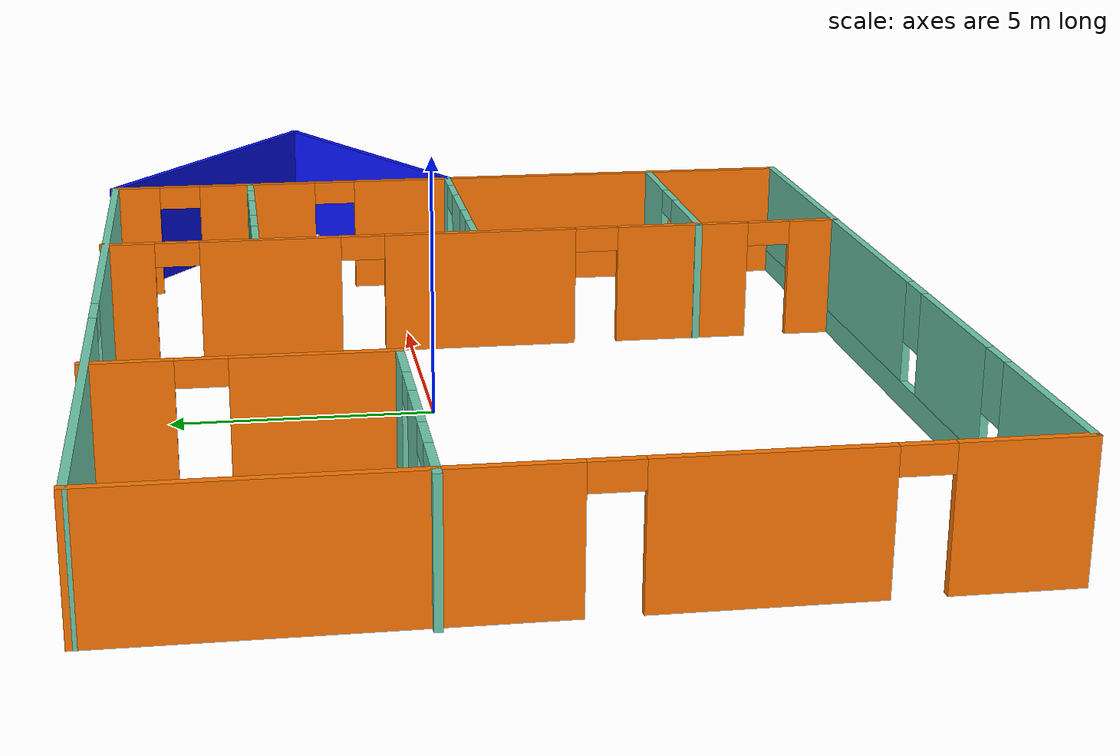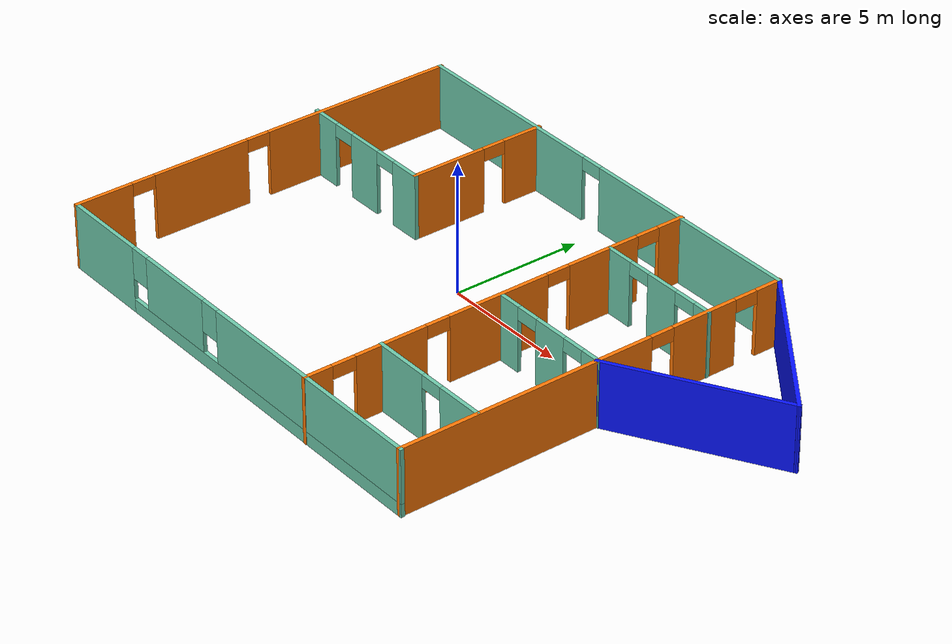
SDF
<?xml version='1.0'?>
<sdf version='1.6'>
  <model name='Building'>
    <pose frame=''>2.68697 -1.37383 0 0 -0 0</pose>
    <link name='Wall_0'>
      <pose frame=''>-2.80813 7.61358 0 0 0 -0.001099</pose>
      <visual name='Wall_0_Visual_0'>
        <pose frame=''>-4.97895 0 1.25 0 -0 0</pose>
        <geometry>
          <box>
            <size>8.08618 0.15 2.5</size>
          </box>
        </geometry>
        <material>
          <script>
            <uri>file://media/materials/scripts/gazebo.material</uri>
            <name>Gazebo/Grey</name>
          </script>
          <ambient>0.435294 0.796078 0.67451 1</ambient>
        </material>
        <meta>
          <layer>0</layer>
        </meta>
      </visual>
      <collision name='Wall_0_Collision_0'>
        <geometry>
          <box>
            <size>8.08618 0.15 2.5</size>
          </box>
        </geometry>
        <pose frame=''>-4.97895 0 1.25 0 -0 0</pose>
      </collision>
      <visual name='Wall_0_Visual_1'>
        <pose frame=''>4.49309 0 1.25 0 -0 0</pose>
        <geometry>
          <box>
            <size>9.0579 0.15 2.5</size>
          </box>
        </geometry>
        <material>
          <script>
            <uri>file://media/materials/scripts/gazebo.material</uri>
            <name>Gazebo/Grey</name>
          </script>
          <ambient>0.435294 0.796078 0.67451 1</ambient>
        </material>
        <meta>
          <layer>0</layer>
        </meta>
      </visual>
      <collision name='Wall_0_Collision_1'>
        <geometry>
          <box>
            <size>9.0579 0.15 2.5</size>
          </box>
        </geometry>
        <pose frame=''>4.49309 0 1.25 0 -0 0</pose>
      </collision>
      <visual name='Wall_0_Visual_2'>
        <pose frame=''>-0.485857 0 2.25 0 -0 0</pose>
        <geometry>
          <box>
            <size>0.9 0.15 0.5</size>
          </box>
        </geometry>
        <material>
          <script>
            <uri>file://media/materials/scripts/gazebo.material</uri>
            <name>Gazebo/Grey</name>
          </script>
          <ambient>0.435294 0.796078 0.67451 1</ambient>
        </material>
        <meta>
          <layer>0</layer>
        </meta>
      </visual>
      <collision name='Wall_0_Collision_2'>
        <geometry>
          <box>
            <size>0.9 0.15 0.5</size>
          </box>
        </geometry>
        <pose frame=''>-0.485857 0 2.25 0 -0 0</pose>
      </collision>
    </link>
    <link name='Wall_11'>
      <pose frame=''>3.73817 4.58148 0 0 -0 0</pose>
      <visual name='Wall_11_Visual_0'>
        <pose frame=''>-1.93324 0 1.25 0 -0 0</pose>
        <geometry>
          <box>
            <size>1.13352 0.15 2.5</size>
          </box>
        </geometry>
        <material>
          <script>
            <uri>file://media/materials/scripts/gazebo.material</uri>
            <name>Gazebo/Grey</name>
          </script>
          <ambient>0.435294 0.796078 0.67451 1</ambient>
        </material>
        <meta>
          <layer>0</layer>
        </meta>
      </visual>
      <collision name='Wall_11_Collision_0'>
        <geometry>
          <box>
            <size>1.13352 0.15 2.5</size>
          </box>
        </geometry>
        <pose frame=''>-1.93324 0 1.25 0 -0 0</pose>
      </collision>
      <visual name='Wall_11_Visual_1'>
        <pose frame=''>0.209239 0 1.25 0 -0 0</pose>
        <geometry>
          <box>
            <size>1.35144 0.15 2.5</size>
          </box>
        </geometry>
        <material>
          <script>
            <uri>file://media/materials/scripts/gazebo.material</uri>
            <name>Gazebo/Grey</name>
          </script>
          <ambient>0.435294 0.796078 0.67451 1</ambient>
        </material>
        <meta>
          <layer>0</layer>
        </meta>
      </visual>
      <collision name='Wall_11_Collision_1'>
        <geometry>
          <box>
            <size>1.35144 0.15 2.5</size>
          </box>
        </geometry>
        <pose frame=''>0.209239 0 1.25 0 -0 0</pose>
      </collision>
      <visual name='Wall_11_Visual_2'>
        <pose frame=''>2.14248 0 1.25 0 -0 0</pose>
        <geometry>
          <box>
            <size>0.71504 0.15 2.5</size>
          </box>
        </geometry>
        <material>
          <script>
            <uri>file://media/materials/scripts/gazebo.material</uri>
            <name>Gazebo/Grey</name>
          </script>
          <ambient>0.435294 0.796078 0.67451 1</ambient>
        </material>
        <meta>
          <layer>0</layer>
        </meta>
      </visual>
      <collision name='Wall_11_Collision_2'>
        <geometry>
          <box>
            <size>0.71504 0.15 2.5</size>
          </box>
        </geometry>
        <pose frame=''>2.14248 0 1.25 0 -0 0</pose>
      </collision>
      <visual name='Wall_11_Visual_3'>
        <pose frame=''>-0.916481 0 2.25 0 -0 0</pose>
        <geometry>
          <box>
            <size>0.9 0.15 0.5</size>
          </box>
        </geometry>
        <material>
          <script>
            <uri>file://media/materials/scripts/gazebo.material</uri>
            <name>Gazebo/Grey</name>
          </script>
          <ambient>0.435294 0.796078 0.67451 1</ambient>
        </material>
        <meta>
          <layer>0</layer>
        </meta>
      </visual>
      <collision name='Wall_11_Collision_3'>
        <geometry>
          <box>
            <size>0.9 0.15 0.5</size>
          </box>
        </geometry>
        <pose frame=''>-0.916481 0 2.25 0 -0 0</pose>
      </collision>
      <visual name='Wall_11_Visual_4'>
        <pose frame=''>1.33496 0 2.25 0 -0 0</pose>
        <geometry>
          <box>
            <size>0.9 0.15 0.5</size>
          </box>
        </geometry>
        <material>
          <script>
            <uri>file://media/materials/scripts/gazebo.material</uri>
            <name>Gazebo/Grey</name>
          </script>
          <ambient>0.435294 0.796078 0.67451 1</ambient>
        </material>
        <meta>
          <layer>0</layer>
        </meta>
      </visual>
      <collision name='Wall_11_Collision_4'>
        <geometry>
          <box>
            <size>0.9 0.15 0.5</size>
          </box>
        </geometry>
        <pose frame=''>1.33496 0 2.25 0 -0 0</pose>
      </collision>
    </link>
    <link name='Wall_13'>
      <pose frame=''>3.77862 0.050456 0 0 -0 0</pose>
      <visual name='Wall_13_Visual_0'>
        <pose frame=''>-2.02383 0 1.25 0 -0 0</pose>
        <geometry>
          <box>
            <size>0.952349 0.15 2.5</size>
          </box>
        </geometry>
        <material>
          <script>
            <uri>file://media/materials/scripts/gazebo.material</uri>
            <name>Gazebo/Grey</name>
          </script>
          <ambient>0.435294 0.796078 0.67451 1</ambient>
        </material>
        <meta>
          <layer>0</layer>
        </meta>
      </visual>
      <collision name='Wall_13_Collision_0'>
        <geometry>
          <box>
            <size>0.952349 0.15 2.5</size>
          </box>
        </geometry>
        <pose frame=''>-2.02383 0 1.25 0 -0 0</pose>
      </collision>
      <visual name='Wall_13_Visual_1'>
        <pose frame=''>0.041638 0 1.25 0 -0 0</pose>
        <geometry>
          <box>
            <size>1.37858 0.15 2.5</size>
          </box>
        </geometry>
        <material>
          <script>
            <uri>file://media/materials/scripts/gazebo.material</uri>
            <name>Gazebo/Grey</name>
          </script>
          <ambient>0.435294 0.796078 0.67451 1</ambient>
        </material>
        <meta>
          <layer>0</layer>
        </meta>
      </visual>
      <collision name='Wall_13_Collision_1'>
        <geometry>
          <box>
            <size>1.37858 0.15 2.5</size>
          </box>
        </geometry>
        <pose frame=''>0.041638 0 1.25 0 -0 0</pose>
      </collision>
      <visual name='Wall_13_Visual_2'>
        <pose frame=''>2.06546 0 1.25 0 -0 0</pose>
        <geometry>
          <box>
            <size>0.869072 0.15 2.5</size>
          </box>
        </geometry>
        <material>
          <script>
            <uri>file://media/materials/scripts/gazebo.material</uri>
            <name>Gazebo/Grey</name>
          </script>
          <ambient>0.435294 0.796078 0.67451 1</ambient>
        </material>
        <meta>
          <layer>0</layer>
        </meta>
      </visual>
      <collision name='Wall_13_Collision_2'>
        <geometry>
          <box>
            <size>0.869072 0.15 2.5</size>
          </box>
        </geometry>
        <pose frame=''>2.06546 0 1.25 0 -0 0</pose>
      </collision>
      <visual name='Wall_13_Visual_3'>
        <pose frame=''>-1.09765 0 2.25 0 -0 0</pose>
        <geometry>
          <box>
            <size>0.9 0.15 0.5</size>
          </box>
        </geometry>
        <material>
          <script>
            <uri>file://media/materials/scripts/gazebo.material</uri>
            <name>Gazebo/Grey</name>
          </script>
          <ambient>0.435294 0.796078 0.67451 1</ambient>
        </material>
        <meta>
          <layer>0</layer>
        </meta>
      </visual>
      <collision name='Wall_13_Collision_3'>
        <geometry>
          <box>
            <size>0.9 0.15 0.5</size>
          </box>
        </geometry>
        <pose frame=''>-1.09765 0 2.25 0 -0 0</pose>
      </collision>
      <visual name='Wall_13_Visual_4'>
        <pose frame=''>1.18093 0 2.25 0 -0 0</pose>
        <geometry>
          <box>
            <size>0.9 0.15 0.5</size>
          </box>
        </geometry>
        <material>
          <script>
            <uri>file://media/materials/scripts/gazebo.material</uri>
            <name>Gazebo/Grey</name>
          </script>
          <ambient>0.435294 0.796078 0.67451 1</ambient>
        </material>
        <meta>
          <layer>0</layer>
        </meta>
      </visual>
      <collision name='Wall_13_Collision_4'>
        <geometry>
          <box>
            <size>0.9 0.15 0.5</size>
          </box>
        </geometry>
        <pose frame=''>1.18093 0 2.25 0 -0 0</pose>
      </collision>
    </link>
    <link name='Wall_15'>
      <pose frame=''>3.67214 -4.70387 0 0 -0 0</pose>
      <visual name='Wall_15_Visual_0'>
        <pose frame=''>-1.37973 0 1.25 0 -0 0</pose>
        <geometry>
          <box>
            <size>2.24055 0.15 2.5</size>
          </box>
        </geometry>
        <material>
          <script>
            <uri>file://media/materials/scripts/gazebo.material</uri>
            <name>Gazebo/Grey</name>
          </script>
          <ambient>0.435294 0.796078 0.67451 1</ambient>
        </material>
        <meta>
          <layer>0</layer>
        </meta>
      </visual>
      <collision name='Wall_15_Collision_0'>
        <geometry>
          <box>
            <size>2.24055 0.15 2.5</size>
          </box>
        </geometry>
        <pose frame=''>-1.37973 0 1.25 0 -0 0</pose>
      </collision>
      <visual name='Wall_15_Visual_1'>
        <pose frame=''>1.57028 0 1.25 0 -0 0</pose>
        <geometry>
          <box>
            <size>1.85945 0.15 2.5</size>
          </box>
        </geometry>
        <material>
          <script>
            <uri>file://media/materials/scripts/gazebo.material</uri>
            <name>Gazebo/Grey</name>
          </script>
          <ambient>0.435294 0.796078 0.67451 1</ambient>
        </material>
        <meta>
          <layer>0</layer>
        </meta>
      </visual>
      <collision name='Wall_15_Collision_1'>
        <geometry>
          <box>
            <size>1.85945 0.15 2.5</size>
          </box>
        </geometry>
        <pose frame=''>1.57028 0 1.25 0 -0 0</pose>
      </collision>
      <visual name='Wall_15_Visual_2'>
        <pose frame=''>0.190549 0 2.25 0 -0 0</pose>
        <geometry>
          <box>
            <size>0.9 0.15 0.5</size>
          </box>
        </geometry>
        <material>
          <script>
            <uri>file://media/materials/scripts/gazebo.material</uri>
            <name>Gazebo/Grey</name>
          </script>
          <ambient>0.435294 0.796078 0.67451 1</ambient>
        </material>
        <meta>
          <layer>0</layer>
        </meta>
      </visual>
      <collision name='Wall_15_Collision_2'>
        <geometry>
          <box>
            <size>0.9 0.15 0.5</size>
          </box>
        </geometry>
        <pose frame=''>0.190549 0 2.25 0 -0 0</pose>
      </collision>
    </link>
    <link name='Wall_17'>
      <collision name='Wall_17_Collision'>
        <geometry>
          <box>
            <size>6.75 0.15 2.5</size>
          </box>
        </geometry>
        <pose frame=''>0 0 1.25 0 -0 0</pose>
      </collision>
      <visual name='Wall_17_Visual'>
        <pose frame=''>0 0 1.25 0 -0 0</pose>
        <geometry>
          <box>
            <size>6.75 0.15 2.5</size>
          </box>
        </geometry>
        <material>
          <script>
            <uri>file://media/materials/scripts/gazebo.material</uri>
            <name>Gazebo/Grey</name>
          </script>
          <ambient>0.0313726 0.0784314 1 1</ambient>
        </material>
        <meta>
          <layer>0</layer>
        </meta>
      </visual>
      <pose frame=''>9.00455 1.66326 0 0 -0 0.523599</pose>
    </link>
    <link name='Wall_18'>
      <collision name='Wall_18_Collision'>
        <geometry>
          <box>
            <size>7.31911 0.15 2.5</size>
          </box>
        </geometry>
        <pose frame=''>0 0 1.25 0 -0 0</pose>
      </collision>
      <visual name='Wall_18_Visual'>
        <pose frame=''>0 0 1.25 0 -0 0</pose>
        <geometry>
          <box>
            <size>7.31911 0.15 2.5</size>
          </box>
        </geometry>
        <material>
          <script>
            <uri>file://media/materials/scripts/gazebo.material</uri>
            <name>Gazebo/Grey</name>
          </script>
          <ambient>0.0313726 0.0784314 1 1</ambient>
        </material>
        <meta>
          <layer>0</layer>
        </meta>
      </visual>
      <pose frame=''>9.00067 5.47181 0 0 -0 2.49536</pose>
    </link>
    <link name='Wall_2'>
      <pose frame=''>-11.7501 0.006796 0 0 0 -1.57013</pose>
      <visual name='Wall_2_Visual_0'>
        <pose frame=''>-3.93136 0 1.25 0 -0 0</pose>
        <geometry>
          <box>
            <size>7.57372 0.15 2.5</size>
          </box>
        </geometry>
        <material>
          <script>
            <uri>file://media/materials/scripts/gazebo.material</uri>
            <name>Gazebo/Grey</name>
          </script>
          <ambient>0.996078 0.47451 0.0196078 1</ambient>
        </material>
        <meta>
          <layer>0</layer>
        </meta>
      </visual>
      <collision name='Wall_2_Collision_0'>
        <geometry>
          <box>
            <size>7.57372 0.15 2.5</size>
          </box>
        </geometry>
        <pose frame=''>-3.93136 0 1.25 0 -0 0</pose>
      </collision>
      <visual name='Wall_2_Visual_1'>
        <pose frame=''>2.66282 0 1.25 0 -0 0</pose>
        <geometry>
          <box>
            <size>3.81463 0.15 2.5</size>
          </box>
        </geometry>
        <material>
          <script>
            <uri>file://media/materials/scripts/gazebo.material</uri>
            <name>Gazebo/Grey</name>
          </script>
          <ambient>0.996078 0.47451 0.0196078 1</ambient>
        </material>
        <meta>
          <layer>0</layer>
        </meta>
      </visual>
      <collision name='Wall_2_Collision_1'>
        <geometry>
          <box>
            <size>3.81463 0.15 2.5</size>
          </box>
        </geometry>
        <pose frame=''>2.66282 0 1.25 0 -0 0</pose>
      </collision>
      <visual name='Wall_2_Visual_2'>
        <pose frame=''>6.59418 0 1.25 0 -0 0</pose>
        <geometry>
          <box>
            <size>2.24808 0.15 2.5</size>
          </box>
        </geometry>
        <material>
          <script>
            <uri>file://media/materials/scripts/gazebo.material</uri>
            <name>Gazebo/Grey</name>
          </script>
          <ambient>0.996078 0.47451 0.0196078 1</ambient>
        </material>
        <meta>
          <layer>0</layer>
        </meta>
      </visual>
      <collision name='Wall_2_Collision_2'>
        <geometry>
          <box>
            <size>2.24808 0.15 2.5</size>
          </box>
        </geometry>
        <pose frame=''>6.59418 0 1.25 0 -0 0</pose>
      </collision>
      <visual name='Wall_2_Visual_3'>
        <pose frame=''>0.305505 0 2.25 0 -0 0</pose>
        <geometry>
          <box>
            <size>0.9 0.15 0.5</size>
          </box>
        </geometry>
        <material>
          <script>
            <uri>file://media/materials/scripts/gazebo.material</uri>
            <name>Gazebo/Grey</name>
          </script>
          <ambient>0.996078 0.47451 0.0196078 1</ambient>
        </material>
        <meta>
          <layer>0</layer>
        </meta>
      </visual>
      <collision name='Wall_2_Collision_3'>
        <geometry>
          <box>
            <size>0.9 0.15 0.5</size>
          </box>
        </geometry>
        <pose frame=''>0.305505 0 2.25 0 -0 0</pose>
      </collision>
      <visual name='Wall_2_Visual_4'>
        <pose frame=''>5.02014 0 2.25 0 -0 0</pose>
        <geometry>
          <box>
            <size>0.9 0.15 0.5</size>
          </box>
        </geometry>
        <material>
          <script>
            <uri>file://media/materials/scripts/gazebo.material</uri>
            <name>Gazebo/Grey</name>
          </script>
          <ambient>0.996078 0.47451 0.0196078 1</ambient>
        </material>
        <meta>
          <layer>0</layer>
        </meta>
      </visual>
      <collision name='Wall_2_Collision_4'>
        <geometry>
          <box>
            <size>0.9 0.15 0.5</size>
          </box>
        </geometry>
        <pose frame=''>5.02014 0 2.25 0 -0 0</pose>
      </collision>
    </link>
    <link name='Wall_3'>
      <pose frame=''>-2.75147 -7.66637 0 0 0 -0.003347</pose>
      <visual name='Wall_3_Visual_0'>
        <pose frame=''>-7.29617 0 1.25 0 -0 0</pose>
        <geometry>
          <box>
            <size>3.45183 0.15 2.5</size>
          </box>
        </geometry>
        <material>
          <script>
            <uri>file://media/materials/scripts/gazebo.material</uri>
            <name>Gazebo/Grey</name>
          </script>
          <ambient>0.435294 0.796078 0.67451 1</ambient>
        </material>
        <meta>
          <layer>0</layer>
        </meta>
      </visual>
      <collision name='Wall_3_Collision_0'>
        <geometry>
          <box>
            <size>3.45183 0.15 2.5</size>
          </box>
        </geometry>
        <pose frame=''>-7.29617 0 1.25 0 -0 0</pose>
      </collision>
      <visual name='Wall_3_Visual_1'>
        <pose frame=''>1.72591 0 0.25 0 -0 0</pose>
        <geometry>
          <box>
            <size>14.5923 0.15 0.5</size>
          </box>
        </geometry>
        <material>
          <script>
            <uri>file://media/materials/scripts/gazebo.material</uri>
            <name>Gazebo/Grey</name>
          </script>
          <ambient>0.435294 0.796078 0.67451 1</ambient>
        </material>
        <meta>
          <layer>0</layer>
        </meta>
      </visual>
      <collision name='Wall_3_Collision_1'>
        <geometry>
          <box>
            <size>14.5923 0.15 0.5</size>
          </box>
        </geometry>
        <pose frame=''>1.72591 0 0.25 0 -0 0</pose>
      </collision>
      <visual name='Wall_3_Visual_2'>
        <pose frame=''>-3.16851 0 1.5 0 -0 0</pose>
        <geometry>
          <box>
            <size>3.2035 0.15 2</size>
          </box>
        </geometry>
        <material>
          <script>
            <uri>file://media/materials/scripts/gazebo.material</uri>
            <name>Gazebo/Grey</name>
          </script>
          <ambient>0.435294 0.796078 0.67451 1</ambient>
        </material>
        <meta>
          <layer>0</layer>
        </meta>
      </visual>
      <collision name='Wall_3_Collision_2'>
        <geometry>
          <box>
            <size>3.2035 0.15 2</size>
          </box>
        </geometry>
        <pose frame=''>-3.16851 0 1.5 0 -0 0</pose>
      </collision>
      <visual name='Wall_3_Visual_3'>
        <pose frame=''>4.12766 0 1.5 0 -0 0</pose>
        <geometry>
          <box>
            <size>9.78884 0.15 2</size>
          </box>
        </geometry>
        <material>
          <script>
            <uri>file://media/materials/scripts/gazebo.material</uri>
            <name>Gazebo/Grey</name>
          </script>
          <ambient>0.435294 0.796078 0.67451 1</ambient>
        </material>
        <meta>
          <layer>0</layer>
        </meta>
      </visual>
      <collision name='Wall_3_Collision_3'>
        <geometry>
          <box>
            <size>9.78884 0.15 2</size>
          </box>
        </geometry>
        <pose frame=''>4.12766 0 1.5 0 -0 0</pose>
      </collision>
      <visual name='Wall_3_Visual_4'>
        <pose frame=''>-5.17026 0 1.9 0 -0 0</pose>
        <geometry>
          <box>
            <size>0.8 0.15 1.2</size>
          </box>
        </geometry>
        <material>
          <script>
            <uri>file://media/materials/scripts/gazebo.material</uri>
            <name>Gazebo/Grey</name>
          </script>
          <ambient>0.435294 0.796078 0.67451 1</ambient>
        </material>
        <meta>
          <layer>0</layer>
        </meta>
      </visual>
      <collision name='Wall_3_Collision_4'>
        <geometry>
          <box>
            <size>0.8 0.15 1.2</size>
          </box>
        </geometry>
        <pose frame=''>-5.17026 0 1.9 0 -0 0</pose>
      </collision>
      <visual name='Wall_3_Visual_5'>
        <pose frame=''>-1.16676 0 1.9 0 -0 0</pose>
        <geometry>
          <box>
            <size>0.8 0.15 1.2</size>
          </box>
        </geometry>
        <material>
          <script>
            <uri>file://media/materials/scripts/gazebo.material</uri>
            <name>Gazebo/Grey</name>
          </script>
          <ambient>0.435294 0.796078 0.67451 1</ambient>
        </material>
        <meta>
          <layer>0</layer>
        </meta>
      </visual>
      <collision name='Wall_3_Collision_5'>
        <geometry>
          <box>
            <size>0.8 0.15 1.2</size>
          </box>
        </geometry>
        <pose frame=''>-1.16676 0 1.9 0 -0 0</pose>
      </collision>
    </link>
    <link name='Wall_4'>
      <pose frame=''>6.14398 -0.032979 0 0 -0 1.57146</pose>
      <visual name='Wall_4_Visual_0'>
        <pose frame=''>-2.74852 0 1.25 0 -0 0</pose>
        <geometry>
          <box>
            <size>9.97962 0.15 2.5</size>
          </box>
        </geometry>
        <material>
          <script>
            <uri>file://media/materials/scripts/gazebo.material</uri>
            <name>Gazebo/Grey</name>
          </script>
          <ambient>0.996078 0.47451 0.0196078 1</ambient>
        </material>
        <meta>
          <layer>0</layer>
        </meta>
      </visual>
      <collision name='Wall_4_Collision_0'>
        <geometry>
          <box>
            <size>9.97962 0.15 2.5</size>
          </box>
        </geometry>
        <pose frame=''>-2.74852 0 1.25 0 -0 0</pose>
      </collision>
      <visual name='Wall_4_Visual_1'>
        <pose frame=''>4.45026 0 1.25 0 -0 0</pose>
        <geometry>
          <box>
            <size>2.61795 0.15 2.5</size>
          </box>
        </geometry>
        <material>
          <script>
            <uri>file://media/materials/scripts/gazebo.material</uri>
            <name>Gazebo/Grey</name>
          </script>
          <ambient>0.996078 0.47451 0.0196078 1</ambient>
        </material>
        <meta>
          <layer>0</layer>
        </meta>
      </visual>
      <collision name='Wall_4_Collision_1'>
        <geometry>
          <box>
            <size>2.61795 0.15 2.5</size>
          </box>
        </geometry>
        <pose frame=''>4.45026 0 1.25 0 -0 0</pose>
      </collision>
      <visual name='Wall_4_Visual_2'>
        <pose frame=''>7.19878 0 1.25 0 -0 0</pose>
        <geometry>
          <box>
            <size>1.0791 0.15 2.5</size>
          </box>
        </geometry>
        <material>
          <script>
            <uri>file://media/materials/scripts/gazebo.material</uri>
            <name>Gazebo/Grey</name>
          </script>
          <ambient>0.996078 0.47451 0.0196078 1</ambient>
        </material>
        <meta>
          <layer>0</layer>
        </meta>
      </visual>
      <collision name='Wall_4_Collision_2'>
        <geometry>
          <box>
            <size>1.0791 0.15 2.5</size>
          </box>
        </geometry>
        <pose frame=''>7.19878 0 1.25 0 -0 0</pose>
      </collision>
      <visual name='Wall_4_Visual_3'>
        <pose frame=''>2.69129 0 2.25 0 -0 0</pose>
        <geometry>
          <box>
            <size>0.9 0.15 0.5</size>
          </box>
        </geometry>
        <material>
          <script>
            <uri>file://media/materials/scripts/gazebo.material</uri>
            <name>Gazebo/Grey</name>
          </script>
          <ambient>0.996078 0.47451 0.0196078 1</ambient>
        </material>
        <meta>
          <layer>0</layer>
        </meta>
      </visual>
      <collision name='Wall_4_Collision_3'>
        <geometry>
          <box>
            <size>0.9 0.15 0.5</size>
          </box>
        </geometry>
        <pose frame=''>2.69129 0 2.25 0 -0 0</pose>
      </collision>
      <visual name='Wall_4_Visual_4'>
        <pose frame=''>6.20924 0 2.25 0 -0 0</pose>
        <geometry>
          <box>
            <size>0.9 0.15 0.5</size>
          </box>
        </geometry>
        <material>
          <script>
            <uri>file://media/materials/scripts/gazebo.material</uri>
            <name>Gazebo/Grey</name>
          </script>
          <ambient>0.996078 0.47451 0.0196078 1</ambient>
        </material>
        <meta>
          <layer>0</layer>
        </meta>
      </visual>
      <collision name='Wall_4_Collision_4'>
        <geometry>
          <box>
            <size>0.9 0.15 0.5</size>
          </box>
        </geometry>
        <pose frame=''>6.20924 0 2.25 0 -0 0</pose>
      </collision>
    </link>
    <link name='Wall_6'>
      <pose frame=''>-6.29248 5.02156 0 0 0 -1.5708</pose>
      <visual name='Wall_6_Visual_0'>
        <pose frame=''>-1.93476 0 1.25 0 -0 0</pose>
        <geometry>
          <box>
            <size>1.63049 0.15 2.5</size>
          </box>
        </geometry>
        <material>
          <script>
            <uri>file://media/materials/scripts/gazebo.material</uri>
            <name>Gazebo/Grey</name>
          </script>
          <ambient>0.996078 0.47451 0.0196078 1</ambient>
        </material>
        <meta>
          <layer>0</layer>
        </meta>
      </visual>
      <collision name='Wall_6_Collision_0'>
        <geometry>
          <box>
            <size>1.63049 0.15 2.5</size>
          </box>
        </geometry>
        <pose frame=''>-1.93476 0 1.25 0 -0 0</pose>
      </collision>
      <visual name='Wall_6_Visual_1'>
        <pose frame=''>1.26524 0 1.25 0 -0 0</pose>
        <geometry>
          <box>
            <size>2.96951 0.15 2.5</size>
          </box>
        </geometry>
        <material>
          <script>
            <uri>file://media/materials/scripts/gazebo.material</uri>
            <name>Gazebo/Grey</name>
          </script>
          <ambient>0.996078 0.47451 0.0196078 1</ambient>
        </material>
        <meta>
          <layer>0</layer>
        </meta>
      </visual>
      <collision name='Wall_6_Collision_1'>
        <geometry>
          <box>
            <size>2.96951 0.15 2.5</size>
          </box>
        </geometry>
        <pose frame=''>1.26524 0 1.25 0 -0 0</pose>
      </collision>
      <visual name='Wall_6_Visual_2'>
        <pose frame=''>-0.669512 0 2.25 0 -0 0</pose>
        <geometry>
          <box>
            <size>0.9 0.15 0.5</size>
          </box>
        </geometry>
        <material>
          <script>
            <uri>file://media/materials/scripts/gazebo.material</uri>
            <name>Gazebo/Grey</name>
          </script>
          <ambient>0.996078 0.47451 0.0196078 1</ambient>
        </material>
        <meta>
          <layer>0</layer>
        </meta>
      </visual>
      <collision name='Wall_6_Collision_2'>
        <geometry>
          <box>
            <size>0.9 0.15 0.5</size>
          </box>
        </geometry>
        <pose frame=''>-0.669512 0 2.25 0 -0 0</pose>
      </collision>
    </link>
    <link name='Wall_7'>
      <pose frame=''>-9.09248 2.34656 0 0 -0 3.14159</pose>
      <visual name='Wall_7_Visual_0'>
        <pose frame=''>-2.24817 0 1.25 0 -0 0</pose>
        <geometry>
          <box>
            <size>1.25366 0.15 2.5</size>
          </box>
        </geometry>
        <material>
          <script>
            <uri>file://media/materials/scripts/gazebo.material</uri>
            <name>Gazebo/Grey</name>
          </script>
          <ambient>0.435294 0.796078 0.67451 1</ambient>
        </material>
        <meta>
          <layer>0</layer>
        </meta>
      </visual>
      <collision name='Wall_7_Collision_0'>
        <geometry>
          <box>
            <size>1.25366 0.15 2.5</size>
          </box>
        </geometry>
        <pose frame=''>-2.24817 0 1.25 0 -0 0</pose>
      </collision>
      <visual name='Wall_7_Visual_1'>
        <pose frame=''>0.006381 0 1.25 0 -0 0</pose>
        <geometry>
          <box>
            <size>1.45545 0.15 2.5</size>
          </box>
        </geometry>
        <material>
          <script>
            <uri>file://media/materials/scripts/gazebo.material</uri>
            <name>Gazebo/Grey</name>
          </script>
          <ambient>0.435294 0.796078 0.67451 1</ambient>
        </material>
        <meta>
          <layer>0</layer>
        </meta>
      </visual>
      <collision name='Wall_7_Collision_1'>
        <geometry>
          <box>
            <size>1.45545 0.15 2.5</size>
          </box>
        </geometry>
        <pose frame=''>0.006381 0 1.25 0 -0 0</pose>
      </collision>
      <visual name='Wall_7_Visual_2'>
        <pose frame=''>2.25455 0 1.25 0 -0 0</pose>
        <geometry>
          <box>
            <size>1.2409 0.15 2.5</size>
          </box>
        </geometry>
        <material>
          <script>
            <uri>file://media/materials/scripts/gazebo.material</uri>
            <name>Gazebo/Grey</name>
          </script>
          <ambient>0.435294 0.796078 0.67451 1</ambient>
        </material>
        <meta>
          <layer>0</layer>
        </meta>
      </visual>
      <collision name='Wall_7_Collision_2'>
        <geometry>
          <box>
            <size>1.2409 0.15 2.5</size>
          </box>
        </geometry>
        <pose frame=''>2.25455 0 1.25 0 -0 0</pose>
      </collision>
      <visual name='Wall_7_Visual_3'>
        <pose frame=''>-1.17134 0 2.25 0 -0 0</pose>
        <geometry>
          <box>
            <size>0.9 0.15 0.5</size>
          </box>
        </geometry>
        <material>
          <script>
            <uri>file://media/materials/scripts/gazebo.material</uri>
            <name>Gazebo/Grey</name>
          </script>
          <ambient>0.435294 0.796078 0.67451 1</ambient>
        </material>
        <meta>
          <layer>0</layer>
        </meta>
      </visual>
      <collision name='Wall_7_Collision_3'>
        <geometry>
          <box>
            <size>0.9 0.15 0.5</size>
          </box>
        </geometry>
        <pose frame=''>-1.17134 0 2.25 0 -0 0</pose>
      </collision>
      <visual name='Wall_7_Visual_4'>
        <pose frame=''>1.1841 0 2.25 0 -0 0</pose>
        <geometry>
          <box>
            <size>0.9 0.15 0.5</size>
          </box>
        </geometry>
        <material>
          <script>
            <uri>file://media/materials/scripts/gazebo.material</uri>
            <name>Gazebo/Grey</name>
          </script>
          <ambient>0.435294 0.796078 0.67451 1</ambient>
        </material>
        <meta>
          <layer>0</layer>
        </meta>
      </visual>
      <collision name='Wall_7_Collision_4'>
        <geometry>
          <box>
            <size>0.9 0.15 0.5</size>
          </box>
        </geometry>
        <pose frame=''>1.1841 0 2.25 0 -0 0</pose>
      </collision>
    </link>
    <link name='Wall_9'>
      <pose frame=''>1.27271 -0.018895 0 0 0 -1.5708</pose>
      <visual name='Wall_9_Visual_0'>
        <pose frame=''>-7.19971 0 1.25 0 -0 0</pose>
        <geometry>
          <box>
            <size>1.10059 0.15 2.5</size>
          </box>
        </geometry>
        <material>
          <script>
            <uri>file://media/materials/scripts/gazebo.material</uri>
            <name>Gazebo/Grey</name>
          </script>
          <ambient>0.996078 0.47451 0.0196078 1</ambient>
        </material>
        <meta>
          <layer>0</layer>
        </meta>
      </visual>
      <collision name='Wall_9_Collision_0'>
        <geometry>
          <box>
            <size>1.10059 0.15 2.5</size>
          </box>
        </geometry>
        <pose frame=''>-7.19971 0 1.25 0 -0 0</pose>
      </collision>
      <visual name='Wall_9_Visual_1'>
        <pose frame=''>-4.30282 0 1.25 0 -0 0</pose>
        <geometry>
          <box>
            <size>2.89319 0.15 2.5</size>
          </box>
        </geometry>
        <material>
          <script>
            <uri>file://media/materials/scripts/gazebo.material</uri>
            <name>Gazebo/Grey</name>
          </script>
          <ambient>0.996078 0.47451 0.0196078 1</ambient>
        </material>
        <meta>
          <layer>0</layer>
        </meta>
      </visual>
      <collision name='Wall_9_Collision_1'>
        <geometry>
          <box>
            <size>2.89319 0.15 2.5</size>
          </box>
        </geometry>
        <pose frame=''>-4.30282 0 1.25 0 -0 0</pose>
      </collision>
      <visual name='Wall_9_Visual_2'>
        <pose frame=''>0.049995 0 1.25 0 -0 0</pose>
        <geometry>
          <box>
            <size>4.01244 0.15 2.5</size>
          </box>
        </geometry>
        <material>
          <script>
            <uri>file://media/materials/scripts/gazebo.material</uri>
            <name>Gazebo/Grey</name>
          </script>
          <ambient>0.996078 0.47451 0.0196078 1</ambient>
        </material>
        <meta>
          <layer>0</layer>
        </meta>
      </visual>
      <collision name='Wall_9_Collision_2'>
        <geometry>
          <box>
            <size>4.01244 0.15 2.5</size>
          </box>
        </geometry>
        <pose frame=''>0.049995 0 1.25 0 -0 0</pose>
      </collision>
      <visual name='Wall_9_Visual_3'>
        <pose frame=''>4.35692 0 1.25 0 -0 0</pose>
        <geometry>
          <box>
            <size>2.80142 0.15 2.5</size>
          </box>
        </geometry>
        <material>
          <script>
            <uri>file://media/materials/scripts/gazebo.material</uri>
            <name>Gazebo/Grey</name>
          </script>
          <ambient>0.996078 0.47451 0.0196078 1</ambient>
        </material>
        <meta>
          <layer>0</layer>
        </meta>
      </visual>
      <collision name='Wall_9_Collision_3'>
        <geometry>
          <box>
            <size>2.80142 0.15 2.5</size>
          </box>
        </geometry>
        <pose frame=''>4.35692 0 1.25 0 -0 0</pose>
      </collision>
      <visual name='Wall_9_Visual_4'>
        <pose frame=''>7.20381 0 1.25 0 -0 0</pose>
        <geometry>
          <box>
            <size>1.09237 0.15 2.5</size>
          </box>
        </geometry>
        <material>
          <script>
            <uri>file://media/materials/scripts/gazebo.material</uri>
            <name>Gazebo/Grey</name>
          </script>
          <ambient>0.996078 0.47451 0.0196078 1</ambient>
        </material>
        <meta>
          <layer>0</layer>
        </meta>
      </visual>
      <collision name='Wall_9_Collision_4'>
        <geometry>
          <box>
            <size>1.09237 0.15 2.5</size>
          </box>
        </geometry>
        <pose frame=''>7.20381 0 1.25 0 -0 0</pose>
      </collision>
      <visual name='Wall_9_Visual_5'>
        <pose frame=''>-6.19941 0 2.25 0 -0 0</pose>
        <geometry>
          <box>
            <size>0.9 0.15 0.5</size>
          </box>
        </geometry>
        <material>
          <script>
            <uri>file://media/materials/scripts/gazebo.material</uri>
            <name>Gazebo/Grey</name>
          </script>
          <ambient>0.996078 0.47451 0.0196078 1</ambient>
        </material>
        <meta>
          <layer>0</layer>
        </meta>
      </visual>
      <collision name='Wall_9_Collision_5'>
        <geometry>
          <box>
            <size>0.9 0.15 0.5</size>
          </box>
        </geometry>
        <pose frame=''>-6.19941 0 2.25 0 -0 0</pose>
      </collision>
      <visual name='Wall_9_Visual_6'>
        <pose frame=''>-2.40622 0 2.25 0 -0 0</pose>
        <geometry>
          <box>
            <size>0.9 0.15 0.5</size>
          </box>
        </geometry>
        <material>
          <script>
            <uri>file://media/materials/scripts/gazebo.material</uri>
            <name>Gazebo/Grey</name>
          </script>
          <ambient>0.996078 0.47451 0.0196078 1</ambient>
        </material>
        <meta>
          <layer>0</layer>
        </meta>
      </visual>
      <collision name='Wall_9_Collision_6'>
        <geometry>
          <box>
            <size>0.9 0.15 0.5</size>
          </box>
        </geometry>
        <pose frame=''>-2.40622 0 2.25 0 -0 0</pose>
      </collision>
      <visual name='Wall_9_Visual_7'>
        <pose frame=''>2.50621 0 2.25 0 -0 0</pose>
        <geometry>
          <box>
            <size>0.9 0.15 0.5</size>
          </box>
        </geometry>
        <material>
          <script>
            <uri>file://media/materials/scripts/gazebo.material</uri>
            <name>Gazebo/Grey</name>
          </script>
          <ambient>0.996078 0.47451 0.0196078 1</ambient>
        </material>
        <meta>
          <layer>0</layer>
        </meta>
      </visual>
      <collision name='Wall_9_Collision_7'>
        <geometry>
          <box>
            <size>0.9 0.15 0.5</size>
          </box>
        </geometry>
        <pose frame=''>2.50621 0 2.25 0 -0 0</pose>
      </collision>
      <visual name='Wall_9_Visual_8'>
        <pose frame=''>6.20763 0 2.25 0 -0 0</pose>
        <geometry>
          <box>
            <size>0.9 0.15 0.5</size>
          </box>
        </geometry>
        <material>
          <script>
            <uri>file://media/materials/scripts/gazebo.material</uri>
            <name>Gazebo/Grey</name>
          </script>
          <ambient>0.996078 0.47451 0.0196078 1</ambient>
        </material>
        <meta>
          <layer>0</layer>
        </meta>
      </visual>
      <collision name='Wall_9_Collision_8'>
        <geometry>
          <box>
            <size>0.9 0.15 0.5</size>
          </box>
        </geometry>
        <pose frame=''>6.20763 0 2.25 0 -0 0</pose>
      </collision>
    </link>
    <static>1</static>
  </model>
</sdf>
